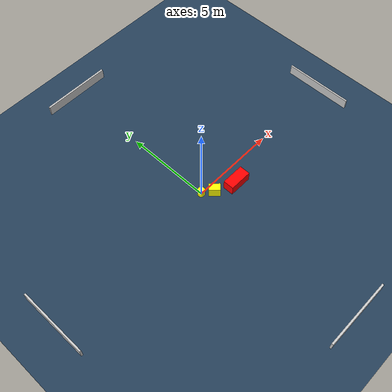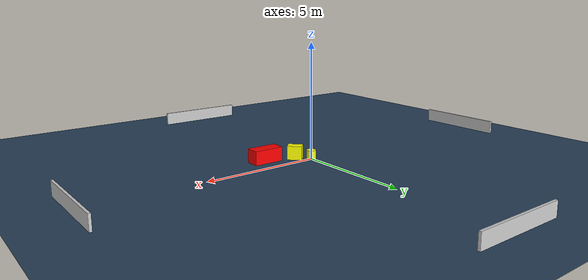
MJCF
<?xml version="1.0" ?>
<mujoco model="generated_environment">
  <option timestep="0.01" integrator="RK4" cone="elliptic"/>
  <default>
    <geom density="1"/>
  </default>
  <asset>
    <texture builtin="gradient" height="3072" name="skybox" rgb1="0.3 0.5 0.7" rgb2="0 0 0" type="skybox" width="512"/>
    <texture builtin="checker" height="300" name="groundplane" rgb1="0.2 0.3 0.4" rgb2="0.1 0.2 0.3" type="2d" width="300"/>
    <material name="groundplane" reflectance="0.2" texrepeat="5 5" texture="groundplane"/>
  </asset>
  <worldbody>
    <light dir="0 0 -1" directional="true" pos="0 0 1.5"/>
    <geom condim="3" friction="0.5 0.005 0.001" material="groundplane" name="floor" pos="0 0 0" size="0 0 0.05" type="plane"/>
    <body name="walls">
      <geom name="wall_1" condim="4" pos="-10.0 0.0 0.3" rgba="0.800000011920929 0.800000011920929 0.800000011920929 1.0" size="0.05 2.0 0.3" type="box"/>
      <geom name="wall_2" condim="4" pos="10.0 0.0 0.3" rgba="0.800000011920929 0.800000011920929 0.800000011920929 1.0" size="0.05 2.0 0.3" type="box"/>
      <geom name="wall_3" condim="4" pos="0.0 -10.0 0.3" rgba="0.800000011920929 0.800000011920929 0.800000011920929 1.0" size="2.0 0.05 0.3" type="box"/>
      <geom name="wall_4" condim="4" pos="0.0 10.0 0.3" rgba="0.800000011920929 0.800000011920929 0.800000011920929 1.0" size="2.0 0.05 0.3" type="box"/>
    </body>
    <body name="robot">
      <joint name="joint_x" type="slide" pos="0 0 0" axis="1 0 0"/>
      <joint name="joint_y" type="slide" pos="0 0 0" axis="0 1 0"/>
      <geom name="robot" type="cylinder" pos="0.0 0.0 0.2" size="0.2 0.2 0.0" mass="5.0" friction="1.0 0.005 0.0001" condim="4" rgba="1.0 1.0 0.0 1.0"/>
    </body>
    <body name="obstacle_1_movable">
      <geom name="obstacle_1_movable" condim="4" pos="0.5256879859362201 -0.45586524021787106 0.3" euler="0 0 44.676100919144396" friction="0.0 0.005 0.001" rgba="1.0 1.0 0.0 1.0" size="0.20509893073532065 0.310955571048273 0.3" type="box" mass="0.1"/>
      <joint type="free"/>
    </body>
    <body name="obstacle_2_static">
      <geom name="obstacle_2_static" condim="4" pos="1.762323107187611 -0.9022963851046883 0.3" euler="0 0 179.75162445436803" friction="0.0 0.005 0.001" rgba="1.0 0.0 0.0 1.0" size="0.6556975744977946 0.3081935920504327 0.3" type="box"/>
    </body>
  </worldbody>
  <actuator>
    <motor name="actuator_x" joint="joint_x" gear="1" ctrlrange="-1 1"/>
    <motor name="actuator_y" joint="joint_y" gear="1" ctrlrange="-1 1"/>
  </actuator>
</mujoco>
